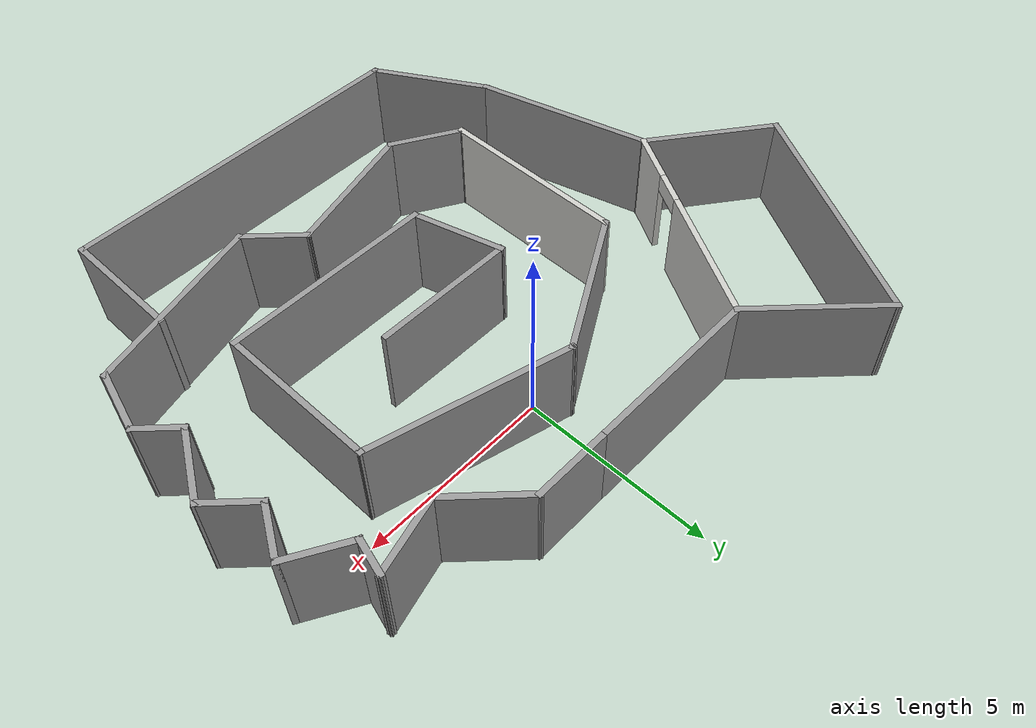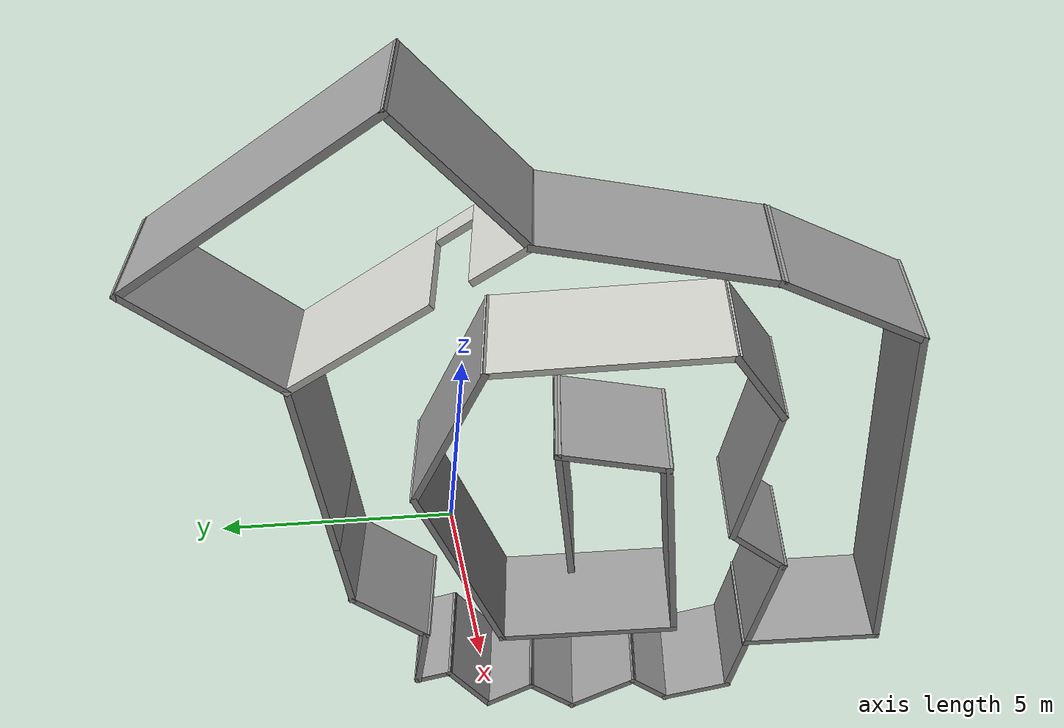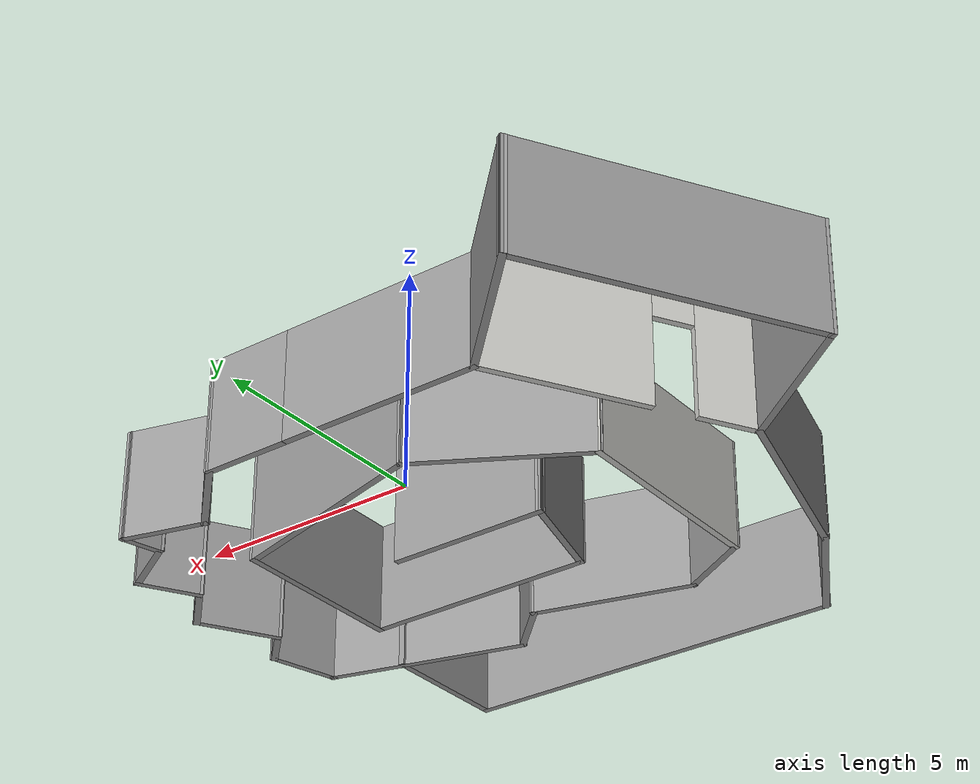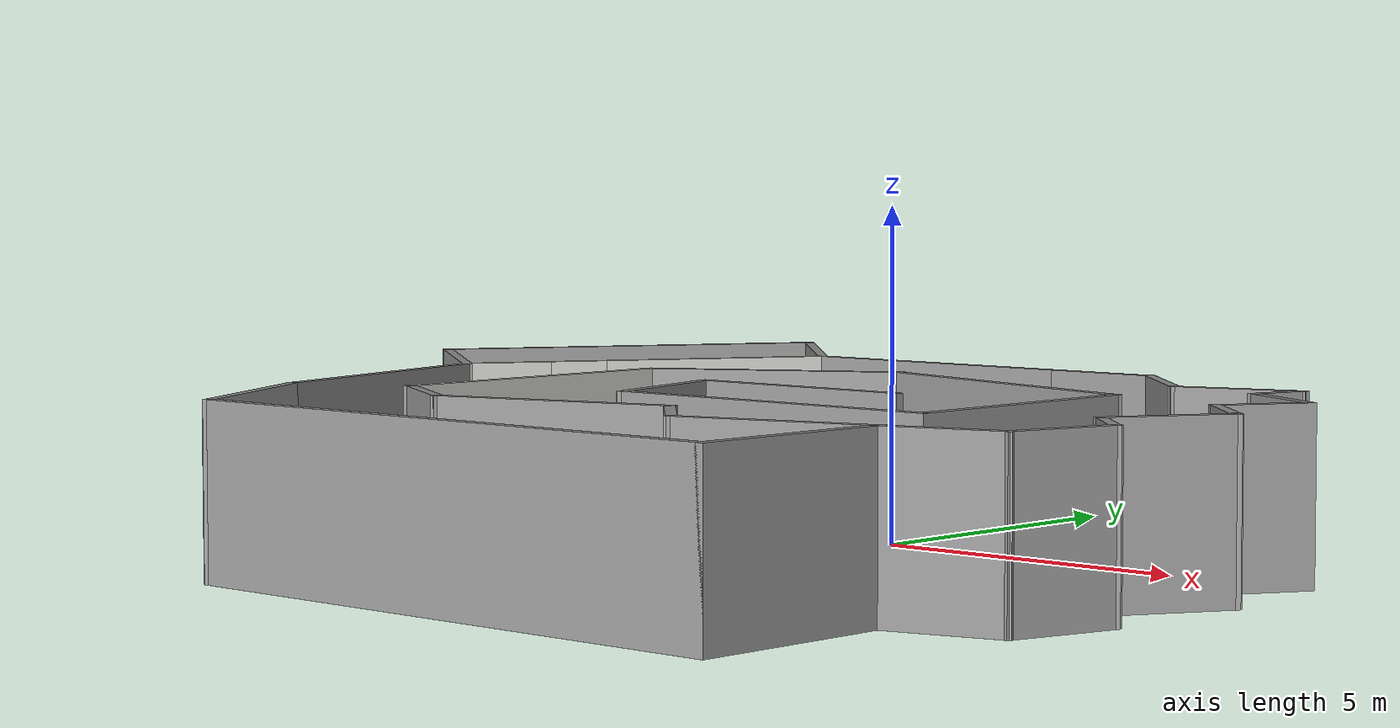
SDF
<?xml version='1.0'?>
<sdf version='1.6'>
  <model name='complex_room'>
    <pose frame=''>-1.02014 -2.12518 0 0 -0 0</pose>
    <link name='Wall_0'>
      <collision name='Wall_0_Collision'>
        <geometry>
          <box>
            <size>3.75 0.15 2.5</size>
          </box>
        </geometry>
        <pose frame=''>0 0 1.25 0 -0 0</pose>
      </collision>
      <visual name='Wall_0_Visual'>
        <pose frame=''>0 0 1.25 0 -0 0</pose>
        <geometry>
          <box>
            <size>3.75 0.15 2.5</size>
          </box>
        </geometry>
        <material>
          <script>
            <uri>file://media/materials/scripts/gazebo.material</uri>
            <name>Gazebo/Grey</name>
          </script>
          <ambient>1 1 1 1</ambient>
        </material>
      </visual>
      <pose frame=''>1.32014 -0.294823 0 0 -0 3.14159</pose>
    </link>
    <link name='Wall_1'>
      <collision name='Wall_1_Collision'>
        <geometry>
          <box>
            <size>2.5 0.15 2.5</size>
          </box>
        </geometry>
        <pose frame=''>0 0 1.25 0 -0 0</pose>
      </collision>
      <visual name='Wall_1_Visual'>
        <pose frame=''>0 0 1.25 0 -0 0</pose>
        <geometry>
          <box>
            <size>2.5 0.15 2.5</size>
          </box>
        </geometry>
        <material>
          <script>
            <uri>file://media/materials/scripts/gazebo.material</uri>
            <name>Gazebo/Grey</name>
          </script>
          <ambient>1 1 1 1</ambient>
        </material>
      </visual>
      <pose frame=''>-0.175747 -1.42979 0 0 0 -1.309</pose>
    </link>
    <link name='Wall_10'>
      <collision name='Wall_10_Collision'>
        <geometry>
          <box>
            <size>1.75 0.15 2.5</size>
          </box>
        </geometry>
        <pose frame=''>0 0 1.25 0 -0 0</pose>
      </collision>
      <visual name='Wall_10_Visual'>
        <pose frame=''>0 0 1.25 0 -0 0</pose>
        <geometry>
          <box>
            <size>1.75 0.15 2.5</size>
          </box>
        </geometry>
        <material>
          <script>
            <uri>file://media/materials/scripts/gazebo.material</uri>
            <name>Gazebo/Grey</name>
          </script>
          <ambient>1 1 1 1</ambient>
        </material>
      </visual>
      <pose frame=''>2.87311 -4.47871 0 0 0 -0.785398</pose>
    </link>
    <link name='Wall_11'>
      <collision name='Wall_11_Collision'>
        <geometry>
          <box>
            <size>4.75 0.15 2.5</size>
          </box>
        </geometry>
        <pose frame=''>0 0 1.25 0 -0 0</pose>
      </collision>
      <visual name='Wall_11_Visual'>
        <pose frame=''>0 0 1.25 0 -0 0</pose>
        <geometry>
          <box>
            <size>4.75 0.15 2.5</size>
          </box>
        </geometry>
        <material>
          <script>
            <uri>file://media/materials/scripts/gazebo.material</uri>
            <name>Gazebo/Grey</name>
          </script>
          <ambient>1 1 1 1</ambient>
        </material>
      </visual>
      <pose frame=''>5.66043 -4.44911 0 0 -0 0.261799</pose>
    </link>
    <link name='Wall_12'>
      <collision name='Wall_12_Collision'>
        <geometry>
          <box>
            <size>1.75 0.15 2.5</size>
          </box>
        </geometry>
        <pose frame=''>0 0 1.25 0 -0 0</pose>
      </collision>
      <visual name='Wall_12_Visual'>
        <pose frame=''>0 0 1.25 0 -0 0</pose>
        <geometry>
          <box>
            <size>1.75 0.15 2.5</size>
          </box>
        </geometry>
        <material>
          <script>
            <uri>file://media/materials/scripts/gazebo.material</uri>
            <name>Gazebo/Grey</name>
          </script>
          <ambient>1 1 1 1</ambient>
        </material>
      </visual>
      <pose frame=''>8.08911 -3.08109 0 0 -0 1.309</pose>
    </link>
    <link name='Wall_13'>
      <collision name='Wall_13_Collision'>
        <geometry>
          <box>
            <size>1.25 0.15 2.5</size>
          </box>
        </geometry>
        <pose frame=''>0 0 1.25 0 -0 0</pose>
      </collision>
      <visual name='Wall_13_Visual'>
        <pose frame=''>0 0 1.25 0 -0 0</pose>
        <geometry>
          <box>
            <size>1.25 0.15 2.5</size>
          </box>
        </geometry>
        <material>
          <script>
            <uri>file://media/materials/scripts/gazebo.material</uri>
            <name>Gazebo/Grey</name>
          </script>
          <ambient>1 1 1 1</ambient>
        </material>
      </visual>
      <pose frame=''>7.90726 -1.91944 0 0 -0 2.35619</pose>
    </link>
    <link name='Wall_14'>
      <collision name='Wall_14_Collision'>
        <geometry>
          <box>
            <size>2 0.15 2.5</size>
          </box>
        </geometry>
        <pose frame=''>0 0 1.25 0 -0 0</pose>
      </collision>
      <visual name='Wall_14_Visual'>
        <pose frame=''>0 0 1.25 0 -0 0</pose>
        <geometry>
          <box>
            <size>2 0.15 2.5</size>
          </box>
        </geometry>
        <material>
          <script>
            <uri>file://media/materials/scripts/gazebo.material</uri>
            <name>Gazebo/Grey</name>
          </script>
          <ambient>1 1 1 1</ambient>
        </material>
      </visual>
      <pose frame=''>7.98085 -0.729454 0 0 -0 1.0472</pose>
    </link>
    <link name='Wall_15'>
      <collision name='Wall_15_Collision'>
        <geometry>
          <box>
            <size>1.5 0.15 2.5</size>
          </box>
        </geometry>
        <pose frame=''>0 0 1.25 0 -0 0</pose>
      </collision>
      <visual name='Wall_15_Visual'>
        <pose frame=''>0 0 1.25 0 -0 0</pose>
        <geometry>
          <box>
            <size>1.5 0.15 2.5</size>
          </box>
        </geometry>
        <material>
          <script>
            <uri>file://media/materials/scripts/gazebo.material</uri>
            <name>Gazebo/Grey</name>
          </script>
          <ambient>1 1 1 1</ambient>
        </material>
      </visual>
      <pose frame=''>7.96605 0.548917 0 0 -0 2.35619</pose>
    </link>
    <link name='Wall_16'>
      <collision name='Wall_16_Collision'>
        <geometry>
          <box>
            <size>1.5 0.15 2.5</size>
          </box>
        </geometry>
        <pose frame=''>0 0 1.25 0 -0 0</pose>
      </collision>
      <visual name='Wall_16_Visual'>
        <pose frame=''>0 0 1.25 0 -0 0</pose>
        <geometry>
          <box>
            <size>1.5 0.15 2.5</size>
          </box>
        </geometry>
        <material>
          <script>
            <uri>file://media/materials/scripts/gazebo.material</uri>
            <name>Gazebo/Grey</name>
          </script>
          <ambient>1 1 1 1</ambient>
        </material>
      </visual>
      <pose frame=''>7.82625 1.61078 0 0 -0 1.0472</pose>
    </link>
    <link name='Wall_17'>
      <collision name='Wall_17_Collision'>
        <geometry>
          <box>
            <size>1.75 0.15 2.5</size>
          </box>
        </geometry>
        <pose frame=''>0 0 1.25 0 -0 0</pose>
      </collision>
      <visual name='Wall_17_Visual'>
        <pose frame=''>0 0 1.25 0 -0 0</pose>
        <geometry>
          <box>
            <size>1.75 0.15 2.5</size>
          </box>
        </geometry>
        <material>
          <script>
            <uri>file://media/materials/scripts/gazebo.material</uri>
            <name>Gazebo/Grey</name>
          </script>
          <ambient>1 1 1 1</ambient>
        </material>
      </visual>
      <pose frame=''>7.47093 2.59535 0 0 -0 2.61799</pose>
    </link>
    <link name='Wall_18'>
      <collision name='Wall_18_Collision'>
        <geometry>
          <box>
            <size>1 0.15 2.5</size>
          </box>
        </geometry>
        <pose frame=''>0 0 1.25 0 -0 0</pose>
      </collision>
      <visual name='Wall_18_Visual'>
        <pose frame=''>0 0 1.25 0 -0 0</pose>
        <geometry>
          <box>
            <size>1 0.15 2.5</size>
          </box>
        </geometry>
        <material>
          <script>
            <uri>file://media/materials/scripts/gazebo.material</uri>
            <name>Gazebo/Grey</name>
          </script>
          <ambient>1 1 1 1</ambient>
        </material>
      </visual>
      <pose frame=''>6.88811 3.40587 0 0 -0 1.309</pose>
    </link>
    <link name='Wall_19'>
      <collision name='Wall_19_Collision'>
        <geometry>
          <box>
            <size>2 0.15 2.5</size>
          </box>
        </geometry>
        <pose frame=''>0 0 1.25 0 -0 0</pose>
      </collision>
      <visual name='Wall_19_Visual'>
        <pose frame=''>0 0 1.25 0 -0 0</pose>
        <geometry>
          <box>
            <size>2 0.15 2.5</size>
          </box>
        </geometry>
        <material>
          <script>
            <uri>file://media/materials/scripts/gazebo.material</uri>
            <name>Gazebo/Grey</name>
          </script>
          <ambient>1 1 1 1</ambient>
        </material>
      </visual>
      <pose frame=''>6.10463 3.57698 0 0 0 -2.87979</pose>
    </link>
    <link name='Wall_2'>
      <collision name='Wall_2_Collision'>
        <geometry>
          <box>
            <size>5.5 0.15 2.5</size>
          </box>
        </geometry>
        <pose frame=''>0 0 1.25 0 -0 0</pose>
      </collision>
      <visual name='Wall_2_Visual'>
        <pose frame=''>0 0 1.25 0 -0 0</pose>
        <geometry>
          <box>
            <size>5.5 0.15 2.5</size>
          </box>
        </geometry>
        <material>
          <script>
            <uri>file://media/materials/scripts/gazebo.material</uri>
            <name>Gazebo/Grey</name>
          </script>
          <ambient>1 1 1 1</ambient>
        </material>
      </visual>
      <pose frame=''>2.80336 -2.56475 0 0 -0 0</pose>
    </link>
    <link name='Wall_20'>
      <collision name='Wall_20_Collision'>
        <geometry>
          <box>
            <size>2.25 0.15 2.5</size>
          </box>
        </geometry>
        <pose frame=''>0 0 1.25 0 -0 0</pose>
      </collision>
      <visual name='Wall_20_Visual'>
        <pose frame=''>0 0 1.25 0 -0 0</pose>
        <geometry>
          <box>
            <size>2.25 0.15 2.5</size>
          </box>
        </geometry>
        <material>
          <script>
            <uri>file://media/materials/scripts/gazebo.material</uri>
            <name>Gazebo/Grey</name>
          </script>
          <ambient>1 1 1 1</ambient>
        </material>
      </visual>
      <pose frame=''>4.46868 4.08003 0 0 -0 2.35619</pose>
    </link>
    <link name='Wall_21'>
      <collision name='Wall_21_Collision'>
        <geometry>
          <box>
            <size>2 0.15 2.5</size>
          </box>
        </geometry>
        <pose frame=''>0 0 1.25 0 -0 0</pose>
      </collision>
      <visual name='Wall_21_Visual'>
        <pose frame=''>0 0 1.25 0 -0 0</pose>
        <geometry>
          <box>
            <size>2 0.15 2.5</size>
          </box>
        </geometry>
        <material>
          <script>
            <uri>file://media/materials/scripts/gazebo.material</uri>
            <name>Gazebo/Grey</name>
          </script>
          <ambient>1 1 1 1</ambient>
        </material>
      </visual>
      <pose frame=''>2.80122 4.82249 0 0 -0 3.14159</pose>
    </link>
    <link name='Wall_22'>
      <collision name='Wall_22_Collision'>
        <geometry>
          <box>
            <size>4.75 0.15 2.5</size>
          </box>
        </geometry>
        <pose frame=''>0 0 1.25 0 -0 0</pose>
      </collision>
      <visual name='Wall_22_Visual'>
        <pose frame=''>0 0 1.25 0 -0 0</pose>
        <geometry>
          <box>
            <size>4.75 0.15 2.5</size>
          </box>
        </geometry>
        <material>
          <script>
            <uri>file://media/materials/scripts/gazebo.material</uri>
            <name>Gazebo/Grey</name>
          </script>
          <ambient>1 1 1 1</ambient>
        </material>
      </visual>
      <pose frame=''>-0.423777 4.82249 0 0 -0 3.14159</pose>
    </link>
    <link name='Wall_23'>
      <pose frame=''>-4.18628 2.28937 0 0 0 -2.0944</pose>
      <visual name='Wall_23_Visual_0'>
        <pose frame=''>-1.15422 0 1.25 0 -0 0</pose>
        <geometry>
          <box>
            <size>3.69155 0.15 2.5</size>
          </box>
        </geometry>
        <material>
          <script>
            <uri>file://media/materials/scripts/gazebo.material</uri>
            <name>Gazebo/CeilingTiled</name>
          </script>
          <ambient>1 1 1 1</ambient>
        </material>
      </visual>
      <collision name='Wall_23_Collision_0'>
        <geometry>
          <box>
            <size>3.69155 0.15 2.5</size>
          </box>
        </geometry>
        <pose frame=''>-1.15422 0 1.25 0 -0 0</pose>
      </collision>
      <visual name='Wall_23_Visual_1'>
        <pose frame=''>2.29578 0 1.25 0 -0 0</pose>
        <geometry>
          <box>
            <size>1.40845 0.15 2.5</size>
          </box>
        </geometry>
        <material>
          <script>
            <uri>file://media/materials/scripts/gazebo.material</uri>
            <name>Gazebo/CeilingTiled</name>
          </script>
          <ambient>1 1 1 1</ambient>
        </material>
      </visual>
      <collision name='Wall_23_Collision_1'>
        <geometry>
          <box>
            <size>1.40845 0.15 2.5</size>
          </box>
        </geometry>
        <pose frame=''>2.29578 0 1.25 0 -0 0</pose>
      </collision>
      <visual name='Wall_23_Visual_2'>
        <pose frame=''>1.14155 0 2.25 0 -0 0</pose>
        <geometry>
          <box>
            <size>0.9 0.15 0.5</size>
          </box>
        </geometry>
        <material>
          <script>
            <uri>file://media/materials/scripts/gazebo.material</uri>
            <name>Gazebo/CeilingTiled</name>
          </script>
          <ambient>1 1 1 1</ambient>
        </material>
      </visual>
      <collision name='Wall_23_Collision_2'>
        <geometry>
          <box>
            <size>0.9 0.15 0.5</size>
          </box>
        </geometry>
        <pose frame=''>1.14155 0 2.25 0 -0 0</pose>
      </collision>
    </link>
    <link name='Wall_24'>
      <collision name='Wall_24_Collision'>
        <geometry>
          <box>
            <size>4.75 0.15 2.5</size>
          </box>
        </geometry>
        <pose frame=''>0 0 1.25 0 -0 0</pose>
      </collision>
      <visual name='Wall_24_Visual'>
        <pose frame=''>0 0 1.25 0 -0 0</pose>
        <geometry>
          <box>
            <size>4.75 0.15 2.5</size>
          </box>
        </geometry>
        <material>
          <script>
            <uri>file://media/materials/scripts/gazebo.material</uri>
            <name>Gazebo/Grey</name>
          </script>
          <ambient>1 1 1 1</ambient>
        </material>
      </visual>
      <pose frame=''>-5.05349 -2.46538 0 0 0 -1.309</pose>
    </link>
    <link name='Wall_25'>
      <collision name='Wall_25_Collision'>
        <geometry>
          <box>
            <size>3.25 0.15 2.5</size>
          </box>
        </geometry>
        <pose frame=''>0 0 1.25 0 -0 0</pose>
      </collision>
      <visual name='Wall_25_Visual'>
        <pose frame=''>0 0 1.25 0 -0 0</pose>
        <geometry>
          <box>
            <size>3.25 0.15 2.5</size>
          </box>
        </geometry>
        <material>
          <script>
            <uri>file://media/materials/scripts/gazebo.material</uri>
            <name>Gazebo/Grey</name>
          </script>
          <ambient>1 1 1 1</ambient>
        </material>
      </visual>
      <pose frame=''>-3.68321 -6.02935 0 0 0 -1.0472</pose>
    </link>
    <link name='Wall_26'>
      <collision name='Wall_26_Collision'>
        <geometry>
          <box>
            <size>9.25 0.15 2.5</size>
          </box>
        </geometry>
        <pose frame=''>0 0 1.25 0 -0 0</pose>
      </collision>
      <visual name='Wall_26_Visual'>
        <pose frame=''>0 0 1.25 0 -0 0</pose>
        <geometry>
          <box>
            <size>9.25 0.15 2.5</size>
          </box>
        </geometry>
        <material>
          <script>
            <uri>file://media/materials/scripts/gazebo.material</uri>
            <name>Gazebo/Grey</name>
          </script>
          <ambient>1 1 1 1</ambient>
        </material>
      </visual>
      <pose frame=''>1.64179 -7.37169 0 0 -0 0</pose>
    </link>
    <link name='Wall_27'>
      <collision name='Wall_27_Collision'>
        <geometry>
          <box>
            <size>3.25 0.15 2.5</size>
          </box>
        </geometry>
        <pose frame=''>0 0 1.25 0 -0 0</pose>
      </collision>
      <visual name='Wall_27_Visual'>
        <pose frame=''>0 0 1.25 0 -0 0</pose>
        <geometry>
          <box>
            <size>3.25 0.15 2.5</size>
          </box>
        </geometry>
        <material>
          <script>
            <uri>file://media/materials/scripts/gazebo.material</uri>
            <name>Gazebo/Grey</name>
          </script>
          <ambient>1 1 1 1</ambient>
        </material>
      </visual>
      <pose frame=''>6.19179 -5.82169 0 0 -0 1.5708</pose>
    </link>
    <link name='Wall_29'>
      <collision name='Wall_29_Collision'>
        <geometry>
          <box>
            <size>3.75 0.15 2.5</size>
          </box>
        </geometry>
        <pose frame=''>0 0 1.25 0 -0 0</pose>
      </collision>
      <visual name='Wall_29_Visual'>
        <pose frame=''>0 0 1.25 0 -0 0</pose>
        <geometry>
          <box>
            <size>3.75 0.15 2.5</size>
          </box>
        </geometry>
        <material>
          <script>
            <uri>file://media/materials/scripts/gazebo.material</uri>
            <name>Gazebo/Grey</name>
          </script>
          <ambient>1 1 1 1</ambient>
        </material>
      </visual>
      <pose frame=''>-3.99657 6.09529 0 0 -0 2.35619</pose>
    </link>
    <link name='Wall_3'>
      <collision name='Wall_3_Collision'>
        <geometry>
          <box>
            <size>4.25 0.15 2.5</size>
          </box>
        </geometry>
        <pose frame=''>0 0 1.25 0 -0 0</pose>
      </collision>
      <visual name='Wall_3_Visual'>
        <pose frame=''>0 0 1.25 0 -0 0</pose>
        <geometry>
          <box>
            <size>4.25 0.15 2.5</size>
          </box>
        </geometry>
        <material>
          <script>
            <uri>file://media/materials/scripts/gazebo.material</uri>
            <name>Gazebo/Grey</name>
          </script>
          <ambient>1 1 1 1</ambient>
        </material>
      </visual>
      <pose frame=''>5.47837 -0.514749 0 0 -0 1.5708</pose>
    </link>
    <link name='Wall_30'>
      <collision name='Wall_30_Collision'>
        <geometry>
          <box>
            <size>6.5 0.15 2.5</size>
          </box>
        </geometry>
        <pose frame=''>0 0 1.25 0 -0 0</pose>
      </collision>
      <visual name='Wall_30_Visual'>
        <pose frame=''>0 0 1.25 0 -0 0</pose>
        <geometry>
          <box>
            <size>6.5 0.15 2.5</size>
          </box>
        </geometry>
        <material>
          <script>
            <uri>file://media/materials/scripts/gazebo.material</uri>
            <name>Gazebo/Grey</name>
          </script>
          <ambient>1 1 1 1</ambient>
        </material>
      </visual>
      <pose frame=''>-6.85686 4.61845 0 0 0 -2.0944</pose>
    </link>
    <link name='Wall_31'>
      <collision name='Wall_31_Collision'>
        <geometry>
          <box>
            <size>3.65403 0.15 2.5</size>
          </box>
        </geometry>
        <pose frame=''>0 0 1.25 0 -0 0</pose>
      </collision>
      <visual name='Wall_31_Visual'>
        <pose frame=''>0 0 1.25 0 -0 0</pose>
        <geometry>
          <box>
            <size>3.65403 0.15 2.5</size>
          </box>
        </geometry>
        <material>
          <script>
            <uri>file://media/materials/scripts/gazebo.material</uri>
            <name>Gazebo/Grey</name>
          </script>
          <ambient>1 1 1 1</ambient>
        </material>
      </visual>
      <pose frame=''>-7.04657 0.812531 0 0 0 -0.647127</pose>
    </link>
    <link name='Wall_4'>
      <collision name='Wall_4_Collision'>
        <geometry>
          <box>
            <size>5.25 0.15 2.5</size>
          </box>
        </geometry>
        <pose frame=''>0 0 1.25 0 -0 0</pose>
      </collision>
      <visual name='Wall_4_Visual'>
        <pose frame=''>0 0 1.25 0 -0 0</pose>
        <geometry>
          <box>
            <size>5.25 0.15 2.5</size>
          </box>
        </geometry>
        <material>
          <script>
            <uri>file://media/materials/scripts/gazebo.material</uri>
            <name>Gazebo/Grey</name>
          </script>
          <ambient>1 1 1 1</ambient>
        </material>
      </visual>
      <pose frame=''>3.01525 2.19524 0 0 -0 2.87979</pose>
    </link>
    <link name='Wall_5'>
      <collision name='Wall_5_Collision'>
        <geometry>
          <box>
            <size>4 0.15 2.5</size>
          </box>
        </geometry>
        <pose frame=''>0 0 1.25 0 -0 0</pose>
      </collision>
      <visual name='Wall_5_Visual'>
        <pose frame=''>0 0 1.25 0 -0 0</pose>
        <geometry>
          <box>
            <size>4 0.15 2.5</size>
          </box>
        </geometry>
        <material>
          <script>
            <uri>file://media/materials/scripts/gazebo.material</uri>
            <name>Gazebo/Grey</name>
          </script>
          <ambient>1 1 1 1</ambient>
        </material>
      </visual>
      <pose frame=''>-1.11495 1.89273 0 0 0 -2.61799</pose>
    </link>
    <link name='Wall_6'>
      <collision name='Wall_6_Collision'>
        <geometry>
          <box>
            <size>5 0.15 2.5</size>
          </box>
        </geometry>
        <pose frame=''>0 0 1.25 0 -0 0</pose>
      </collision>
      <visual name='Wall_6_Visual'>
        <pose frame=''>0 0 1.25 0 -0 0</pose>
        <geometry>
          <box>
            <size>5 0.15 2.5</size>
          </box>
        </geometry>
        <material>
          <script>
            <uri>file://media/materials/scripts/gazebo.material</uri>
            <name>Gazebo/CeilingTiled</name>
          </script>
          <ambient>1 1 1 1</ambient>
        </material>
      </visual>
      <pose frame=''>-2.78205 -1.49477 0 0 0 -1.5708</pose>
    </link>
    <link name='Wall_7'>
      <collision name='Wall_7_Collision'>
        <geometry>
          <box>
            <size>0.16 0.15 2.5</size>
          </box>
        </geometry>
        <pose frame=''>0 0 1.25 0 -0 0</pose>
      </collision>
      <visual name='Wall_7_Visual'>
        <pose frame=''>0 0 1.25 0 -0 0</pose>
        <geometry>
          <box>
            <size>0.16 0.15 2.5</size>
          </box>
        </geometry>
        <material>
          <script>
            <uri>file://media/materials/scripts/gazebo.material</uri>
            <name>Gazebo/Grey</name>
          </script>
          <ambient>1 1 1 1</ambient>
        </material>
      </visual>
      <pose frame=''>-2.77705 -3.91977 0 0 -0 0</pose>
    </link>
    <link name='Wall_8'>
      <collision name='Wall_8_Collision'>
        <geometry>
          <box>
            <size>2 0.15 2.5</size>
          </box>
        </geometry>
        <pose frame=''>0 0 1.25 0 -0 0</pose>
      </collision>
      <visual name='Wall_8_Visual'>
        <pose frame=''>0 0 1.25 0 -0 0</pose>
        <geometry>
          <box>
            <size>2 0.15 2.5</size>
          </box>
        </geometry>
        <material>
          <script>
            <uri>file://media/materials/scripts/gazebo.material</uri>
            <name>Gazebo/Grey</name>
          </script>
          <ambient>1 1 1 1</ambient>
        </material>
      </visual>
      <pose frame=''>-1.97098 -4.38227 0 0 0 -0.523599</pose>
    </link>
    <link name='Wall_9'>
      <collision name='Wall_9_Collision'>
        <geometry>
          <box>
            <size>3.75 0.15 2.5</size>
          </box>
        </geometry>
        <pose frame=''>0 0 1.25 0 -0 0</pose>
      </collision>
      <visual name='Wall_9_Visual'>
        <pose frame=''>0 0 1.25 0 -0 0</pose>
        <geometry>
          <box>
            <size>3.75 0.15 2.5</size>
          </box>
        </geometry>
        <material>
          <script>
            <uri>file://media/materials/scripts/gazebo.material</uri>
            <name>Gazebo/Grey</name>
          </script>
          <ambient>1 1 1 1</ambient>
        </material>
      </visual>
      <pose frame=''>0.568759 -4.3789 0 0 -0 0.261799</pose>
    </link>
    <static>1</static>
  </model>
</sdf>
